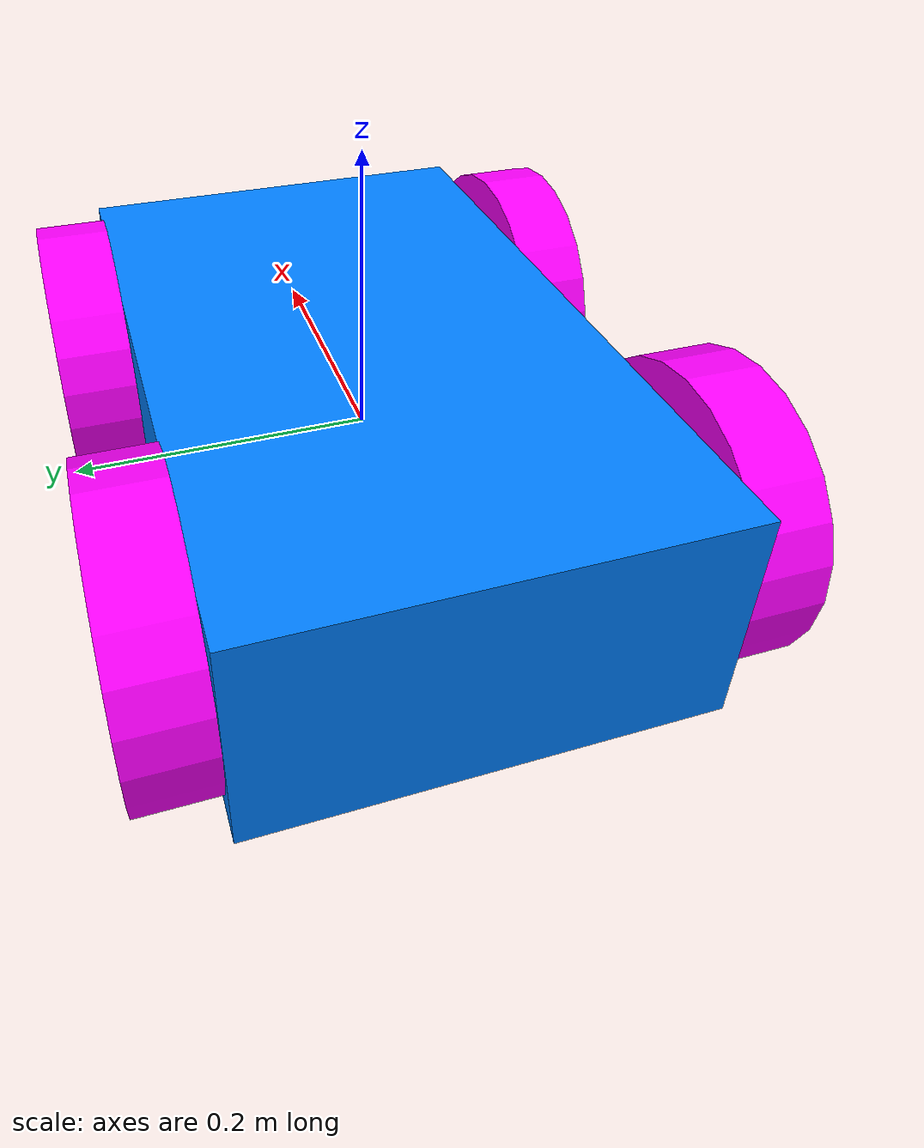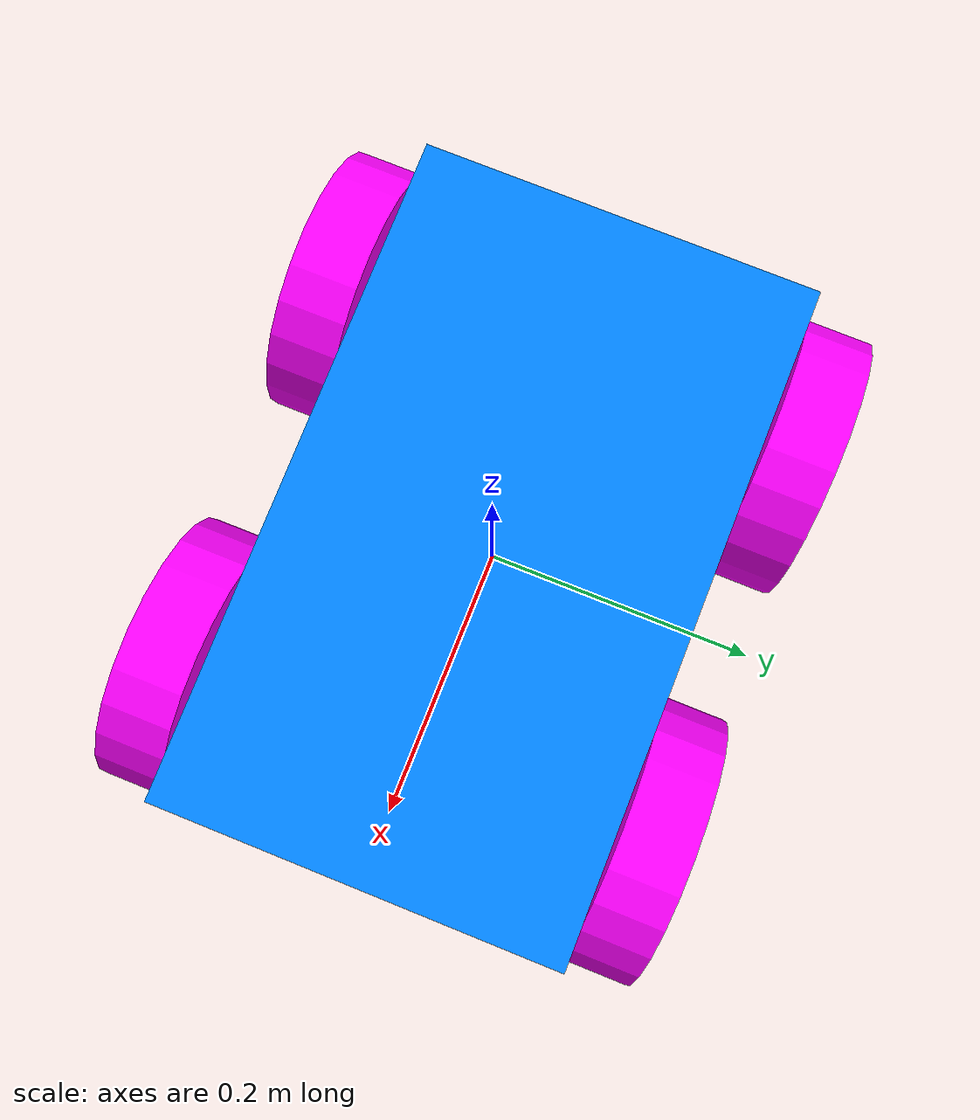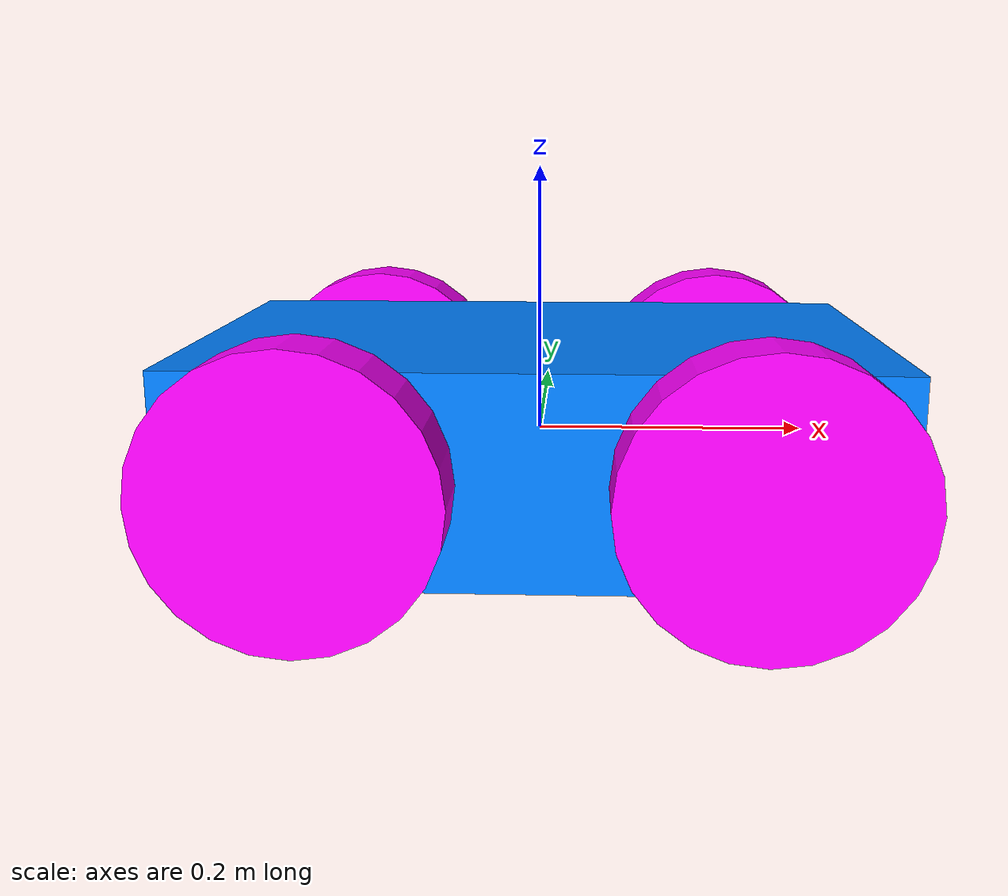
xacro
<?xml version="1.0"?>

<robot name="test_1" xmlns:xacro = "https://www.ros.org/wiki/xacro">
    <link name="chassis">

        <inertial>
            <mass value="0.5"/>
            <inertia ixx="0.046875" ixy="0" ixz="0" iyy="0.11354" iyz="0" izz="0.14167"/>
        </inertial>

        <collision name = "chassis_collision">
            <origin xyz="0.0 0.0 0.0" rpy="0.0 0.0 0.0"/>
            <geometry>
                <box size="0.5 0.3 0.15"/>
            </geometry>
        </collision>

        <visual>
            <origin xyz="0.0 0.0 0.0" rpy="0.0 0.0 0.0"/>
            <geometry>
                <box size="0.5 0.3 0.15"/>
            </geometry>
            <material name="blue">
                <color rgba="0 0.5 1 1"/>
            </material>
        </visual>
    </link>

    <xacro:include filename='$(find Foxhead_012)/urdf/materials.xacro'/>
    <xacro:include filename="$(find Foxhead_012)/urdf/macros.xacro"/>

    <xacro:wheel_link name_a="front_right_wheel"/>
    <xacro:wheel_link name_a= "front_left_wheel"/>
    <xacro:wheel_link name_a="rear_right_wheel"/>
    <xacro:wheel_link name_a="rear_left_wheel"/>

    <xacro:joint_link name_b="front_right_joint" child="front_right_wheel" origin_xyz="0.15 0.175 0"/>
    <xacro:joint_link name_b="front_left_joint" child="front_left_wheel" origin_xyz="0.15 -0.175 0"/>
    <xacro:joint_link name_b="rear_right_joint" child="rear_right_wheel" origin_xyz="-0.15 0.175 0"/>
    <xacro:joint_link name_b="rear_left_joint" child="rear_left_wheel" origin_xyz="-0.15 -0.175 0"/>

</robot>

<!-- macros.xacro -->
<robot name="test_1"  xmlns:xacro="http://www.ros.org/wiki/xacro">
    <xacro:macro name='wheel_link' params='name_a'>
        <link name="${name_a}">
            <inertial>
                <origin xyz="0 0 0" rpy="0 1.57 1.57"/>
                <mass value="0.2"/>
                <inertia ixx="0.0005417" ixy="0" ixz="0" iyy="0.0005417" iyz="0" izz="0.001"/>
            </inertial>

            <collision>
                <origin xyz="0 0 0" rpy="0 1.57 1.57"/>
                <geometry>
                    <cylinder radius="0.1" length="0.05"/>
                </geometry>
            </collision>

            <visual>
                <origin xyz="0 0 0" rpy="0 1.57 1.57"/>
                <geometry>
                    <cylinder radius="0.1" length="0.05"/>
                </geometry>
                <material name="red">
                    <color rgba="1 0 1 1"/>
                </material>
            </visual>
        </link>
    </xacro:macro>

    <xacro:macro name='joint_link' params='name_b child origin_xyz'>
        <joint name="${name_b}" type="continuous">
            <origin xyz="${origin_xyz}" rpy="0 0 0"/>
            <parent link="chassis"/>
            <child link="${child}"/>
            <axis xyz="0 1 0"/>
            <limit effort="1000" velocity="1000"/>
            <joint_properties damping="1.0" friction="1.0"/>
        </joint>
    </xacro:macro>
</robot>
